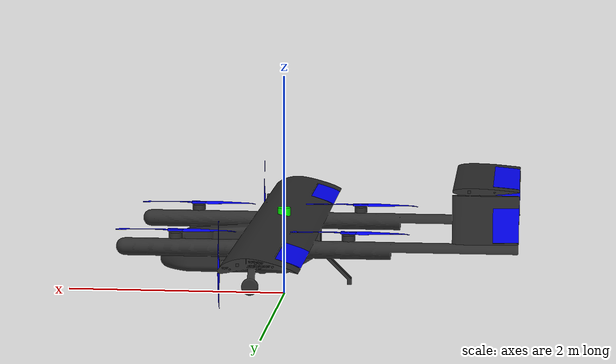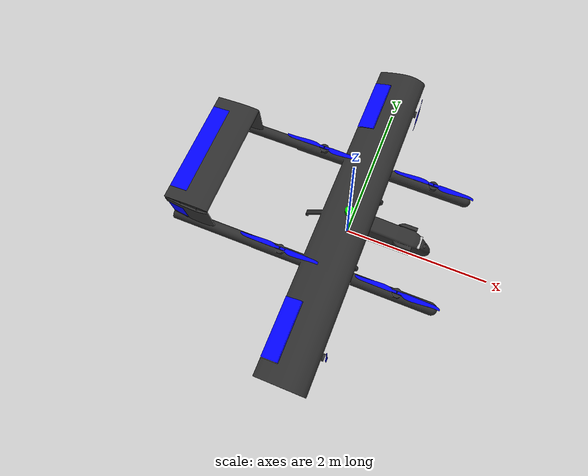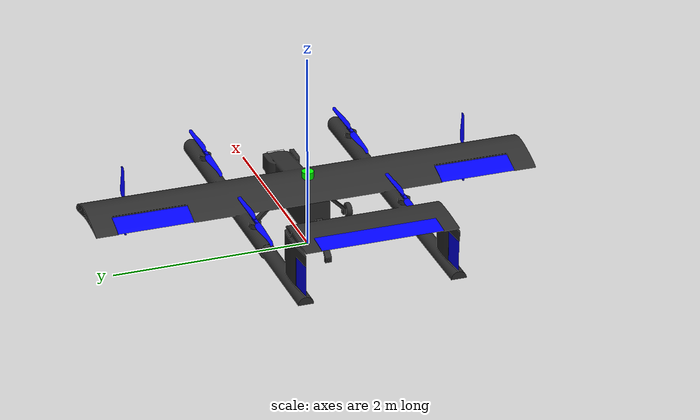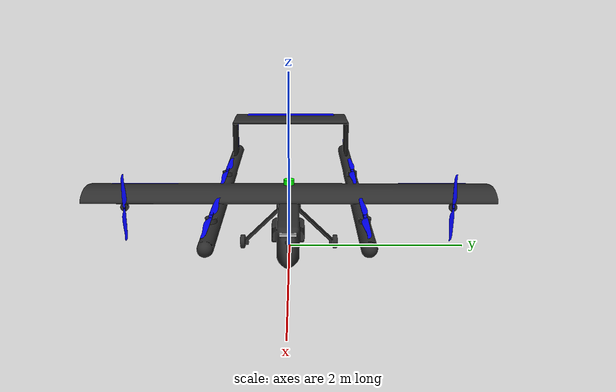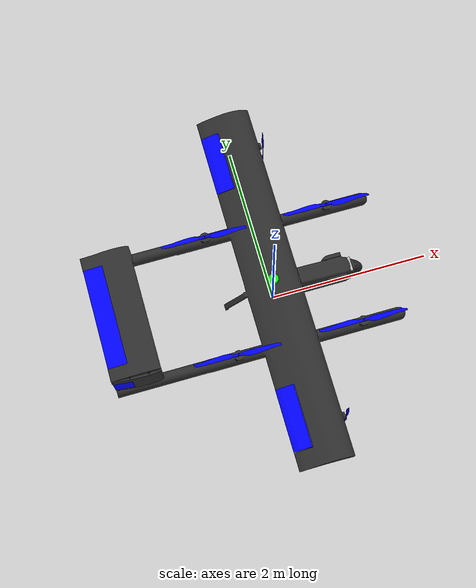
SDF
<?xml version="1.0"?>
<!-- DO NOT EDIT: Generated from p110_v2.sdf.jinja -->
<sdf version='1.10'>
  <model name='p110_v2'>
    <pose>0 0 0.8 0 0 0</pose>
    <link name='base_link'>
      <pose>0 0 0 0 0 0</pose>
      <inertial>
        <pose>0.3 0 -0.2 0 0 0</pose>
        <mass>40.0</mass>
        <inertia>
          <ixx>14.77</ixx>
          <ixy>-0.01</ixy>
          <ixz>-6.52</ixz>
          <iyy>36.47</iyy>
          <iyz>0.00</iyz>
          <izz>45.82</izz>
        </inertia>
      </inertial>
      <collision name='base_link_collision'>
        <pose>-0.5 0 0.2 0 0 0</pose>
        <geometry>
          <box>
            <size>3.89 4.57 1.8</size>
          </box>
        </geometry>
        <surface>
          <contact>
            <ode>
              <kp>100000</kp>
              <kd>1.0</kd>
              <max_vel>0.1</max_vel>
              <min_depth>0.001</min_depth>
            </ode>
          </contact>
          <friction>
            <ode />
          </friction>
        </surface>
      </collision>
      <visual name='base_link_visual'>
        <geometry>
          <mesh>
            <uri>model://p110_v2/meshes/wing.STL</uri>
          </mesh>
        </geometry>
        <material>
          <ambient>.175 .175 .175 1.0</ambient>
          <diffuse>.175 .175 .175 1.0</diffuse>
        </material>
      </visual>
      <gravity>1</gravity>
      <velocity_decay />
      <self_collide>0</self_collide>
      <sensor name="imu_sensor" type="imu">
        <gz_frame_id>base_link</gz_frame_id>
        <always_on>1</always_on>
        <update_rate>250</update_rate>
        <imu>
          <angular_velocity>
            <x>
              <noise type="gaussian">
                <mean>0</mean>
                <stddev>0.0003394</stddev>
                <dynamic_bias_stddev>3.8785e-05</dynamic_bias_stddev>
                <dynamic_bias_correlation_time>1000</dynamic_bias_correlation_time>
              </noise>
            </x>
            <y>
              <noise type="gaussian">
                <mean>0</mean>
                <stddev>0.0003394</stddev>
                <dynamic_bias_stddev>3.8785e-05</dynamic_bias_stddev>
                <dynamic_bias_correlation_time>1000</dynamic_bias_correlation_time>
              </noise>
            </y>
            <z>
              <noise type="gaussian">
                <mean>0</mean>
                <stddev>0.0003394</stddev>
                <dynamic_bias_stddev>3.8785e-05</dynamic_bias_stddev>
                <dynamic_bias_correlation_time>1000</dynamic_bias_correlation_time>
              </noise>
            </z>
          </angular_velocity>
          <linear_acceleration>
            <x>
              <noise type="gaussian">
                <mean>0</mean>
                <stddev>0.004</stddev>
                <dynamic_bias_stddev>0.006</dynamic_bias_stddev>
                <dynamic_bias_correlation_time>300</dynamic_bias_correlation_time>
              </noise>
            </x>
            <y>
              <noise type="gaussian">
                <mean>0</mean>
                <stddev>0.004</stddev>
                <dynamic_bias_stddev>0.006</dynamic_bias_stddev>
                <dynamic_bias_correlation_time>300</dynamic_bias_correlation_time>
              </noise>
            </y>
            <z>
              <noise type="gaussian">
                <mean>0</mean>
                <stddev>0.004</stddev>
                <dynamic_bias_stddev>0.006</dynamic_bias_stddev>
                <dynamic_bias_correlation_time>300</dynamic_bias_correlation_time>
              </noise>
            </z>
          </linear_acceleration>
        </imu>
      </sensor>
      <sensor name="air_pressure_sensor" type="air_pressure">
        <gz_frame_id>base_link</gz_frame_id>
        <always_on>1</always_on>
        <update_rate>50</update_rate>
        <air_pressure>
          <pressure>
            <noise type="gaussian">
              <mean>0</mean>
              <stddev>0.01</stddev>
            </noise>
          </pressure>
        </air_pressure>
      </sensor>
      <sensor name="magnetometer_sensor" type="magnetometer">
        <gz_frame_id>base_link</gz_frame_id>
        <always_on>1</always_on>
        <update_rate>100</update_rate>
        <magnetometer>
          <!-- TODO: update to fix units and coordinate system when we move past Harmonic -->
          <!-- See https://github.com/gazebosim/gz-sim/pull/2460 -->
          <!-- 3mgauss RMS: NOTE: noise is in tesla but sensor reports data in gauss -->
          <!-- Noise modeled after IIS2MDC -->
          <x>
            <noise type="gaussian">
              <stddev>0.0001</stddev>
            </noise>
          </x>
          <y>
            <noise type="gaussian">
              <stddev>0.0001</stddev>
            </noise>
          </y>
          <z>
            <noise type="gaussian">
              <stddev>0.0001</stddev>
            </noise>
          </z>
        </magnetometer>
      </sensor>
      <sensor name="navsat_sensor" type="navsat">
        <gz_frame_id>base_link</gz_frame_id>
        <always_on>1</always_on>
        <update_rate>30</update_rate>
      </sensor>

    </link>

    <!-- Lidar physical link + fixed joint so it renders as a cylinder -->
    <joint name="lidar_sensor_joint" type="fixed">
      <parent>base_link</parent>
      <child>velodyne</child>
      <pose relative_to="base_link">0 0 -0.036 0 0 0</pose>
    </joint>

    <link name="velodyne">
      <pose relative_to="base_link">0 0 -0.036 0 0 0</pose>
      <inertial>
        <mass>0.83</mass>
        <inertia>
          <ixx>0.000908</ixx>
          <iyy>0.000908</iyy>
          <izz>0.001104</izz>
          <ixy>0</ixy>
          <ixz>0</ixz>
          <iyz>0</iyz>
        </inertia>
      </inertial>
      <collision name="lidar_collision">
        <pose>0 0 0 0 0 0</pose>
        <geometry>
          <cylinder>
            <radius>0.0516</radius>
            <length>0.0717</length>
          </cylinder>
        </geometry>
      </collision>
      <visual name="lidar_visual">
        <pose>0 0 0 0 0 0</pose>
        <geometry>
          <cylinder>
            <radius>0.06</radius>
            <length>0.0717</length>
          </cylinder>
        </geometry>

        <material>
          <ambient>0 0.8 0 1</ambient>
          <diffuse>0 1 0 1</diffuse>
        </material>
      </visual>

      <sensor name="lidar_vlp16" type="gpu_lidar">
        <pose>0 0 0 0 0 0</pose>
        <gz_frame_id>velodyne</gz_frame_id>
        <topic>/velodyne_points</topic>
        <update_rate>5</update_rate>
        <always_on>true</always_on>
        <visualize>true</visualize>
        <lidar>
          <scan>
            <horizontal>
              <samples>360</samples>
              <resolution>1</resolution>
              <min_angle>-3.14159265</min_angle>
              <max_angle>3.14159265</max_angle>
            </horizontal>
            <vertical>
              <samples>16</samples>
              <resolution>1</resolution>
              <min_angle>-0.174532925</min_angle>
              <max_angle>0.174532925</max_angle>
            </vertical>
          </scan>
          <range>
            <min>0.5</min>
            <max>50.0</max>
            <resolution>0.01</resolution>
          </range>
          <noise>
            <type>gaussian</type>
            <mean>0.0</mean>
            <stddev>0.01</stddev>
          </noise>
        </lidar>
      </sensor>
    </link>

<!-- replace with zed x -->
    <include merge='true'>
      <uri>model://better_cam</uri>
      <pose>0.97 0 -0.26 0 0 0</pose>
    </include>
    <joint name="CameraJoint" type="fixed">
      <parent>base_link</parent>
      <child>camera_link</child>
      <pose relative_to="base_link">0.97 0 -0.26 0 0 0</pose>
    </joint>

    <link name='rotor_0'>
      <pose>0.89 -0.76 -0.08 0 0 0</pose>
      <inertial>
        <pose>0 0 0 0 0 0</pose>
        <mass>0.43</mass>
        <inertia>
          <ixx>0.03</ixx>
          <ixy>0</ixy>
          <ixz>0</ixz>
          <iyy>0.000</iyy>
          <iyz>0</iyz>
          <izz>0.03</izz>
        </inertia>
      </inertial>
      <collision name='rotor_0_collision'>
        <pose>0 0 0 0 0 0</pose>
        <geometry>
          <cylinder>
            <length>1.08</length>
            <radius>0.1</radius>
          </cylinder>
        </geometry>
        <surface>
          <contact>
            <ode />
          </contact>
          <friction>
            <ode />
          </friction>
        </surface>
      </collision>
      <visual name='rotor_0_visual'>
        <pose>0 0 0 0 0 0</pose>
        <geometry>
          <mesh>
            <uri>model://p110_v2/meshes/prop_cw.STL</uri>
          </mesh>
        </geometry>
        <material>
          <ambient>0 0 1 1.0</ambient>
          <diffuse>0 0 1 1.0</diffuse>
        </material>
      </visual>
      <gravity>1</gravity>
      <velocity_decay />
      <self_collide>0</self_collide>
    </link>

    <joint name='rotor_0_joint' type='revolute'>
      <child>rotor_0</child>
      <parent>base_link</parent>
      <axis>
        <xyz>0 0 1</xyz> <!-- vertical thrust (lift) -->
        <limit>
          <lower>-1e+16</lower>
          <upper>1e+16</upper>
        </limit>
        <dynamics>
          <spring_reference>0</spring_reference>
          <spring_stiffness>0</spring_stiffness>
        </dynamics>
      </axis>
    </joint>

    <link name='rotor_1'>
      <pose>-0.645 0.76 -0.08 0 0 0</pose>
      <inertial>
        <pose>0 0 0 0 0 0</pose>
        <mass>0.43</mass>
        <inertia>
          <ixx>0.03</ixx>
          <ixy>0</ixy>
          <ixz>0</ixz>
          <iyy>0.000</iyy>
          <iyz>0</iyz>
          <izz>0.03</izz>
        </inertia>
      </inertial>
      <collision name='rotor_1_collision'>
        <pose>0 0 0 0 0 0</pose>
        <geometry>
          <cylinder>
            <length>1.08</length>
            <radius>0.1</radius>
          </cylinder>
        </geometry>
        <surface>
          <contact>
            <ode />
          </contact>
          <friction>
            <ode />
          </friction>
        </surface>
      </collision>
      <visual name='rotor_1_visual'>
        <pose>0 0 0 0 0 0</pose>
        <geometry>
          <mesh>
            <uri>model://p110_v2/meshes/prop_cw.STL</uri>
          </mesh>
        </geometry>
        <material>
          <ambient>0 0 1 1.0</ambient>
          <diffuse>0 0 1 1.0</diffuse>
        </material>
      </visual>
      <gravity>1</gravity>
      <velocity_decay />
      <self_collide>0</self_collide>
    </link>

    <joint name='rotor_1_joint' type='revolute'>
      <child>rotor_1</child>
      <parent>base_link</parent>
      <axis>
        <xyz>0 0 1</xyz> <!-- vertical thrust (lift) -->
        <limit>
          <lower>-1e+16</lower>
          <upper>1e+16</upper>
        </limit>
        <dynamics>
          <spring_reference>0</spring_reference>
          <spring_stiffness>0</spring_stiffness>
        </dynamics>
      </axis>
    </joint>

    <link name='rotor_2'>
      <pose>0.89 0.76 -0.08 0 0 0</pose>
      <inertial>
        <pose>0 0 0 0 0 0</pose>
        <mass>0.43</mass>
        <inertia>
          <ixx>0.03</ixx>
          <ixy>0</ixy>
          <ixz>0</ixz>
          <iyy>0.000</iyy>
          <iyz>0</iyz>
          <izz>0.03</izz>
        </inertia>
      </inertial>
      <collision name='rotor_2_collision'>
        <pose>0 0 0 0 0 0</pose>
        <geometry>
          <cylinder>
            <length>1.08</length>
            <radius>0.1</radius>
          </cylinder>
        </geometry>
        <surface>
          <contact>
            <ode />
          </contact>
          <friction>
            <ode />
          </friction>
        </surface>
      </collision>
      <visual name='rotor_2_visual'>
        <pose>0 0 0 0 0 0</pose>
        <geometry>
          <mesh>
            <uri>model://p110_v2/meshes/prop_cw.STL</uri>
          </mesh>
        </geometry>
        <material>
          <ambient>0 0 1 1.0</ambient>
          <diffuse>0 0 1 1.0</diffuse>
        </material>
      </visual>
      <gravity>1</gravity>
      <velocity_decay />
      <self_collide>0</self_collide>
    </link>

    <joint name='rotor_2_joint' type='revolute'>
      <child>rotor_2</child>
      <parent>base_link</parent>
      <axis>
        <xyz>0 0 1</xyz> <!-- vertical thrust (lift) -->
        <limit>
          <lower>-1e+16</lower>
          <upper>1e+16</upper>
        </limit>
        <dynamics>
          <spring_reference>0</spring_reference>
          <spring_stiffness>0</spring_stiffness>
        </dynamics>
      </axis>
    </joint>
    <link name='rotor_3'>
      <pose>-0.645 -0.76 -0.08 0 0 0</pose>
      <inertial>
        <pose>0 0 0 0 0 0</pose>
        <mass>0.43</mass>
        <inertia>
          <ixx>0.03</ixx>
          <ixy>0</ixy>
          <ixz>0</ixz>
          <iyy>0.000</iyy>
          <iyz>0</iyz>
          <izz>0.03</izz>
        </inertia>
      </inertial>
      <collision name='rotor_3_collision'>
        <pose>0 0 0 0 0 0</pose>
        <geometry>
          <cylinder>
            <length>1.08</length>
            <radius>0.1</radius>
          </cylinder>
        </geometry>
        <surface>
          <contact>
            <ode />
          </contact>
          <friction>
            <ode />
          </friction>
        </surface>
      </collision>
      <visual name='rotor_3_visual'>
        <pose>0 0 0 0 0 0</pose>
        <geometry>
          <mesh>
            <uri>model://p110_v2/meshes/prop_cw.STL</uri>
          </mesh>
        </geometry>
        <material>
          <ambient>0 0 1 1.0</ambient>
          <diffuse>0 0 1 1.0</diffuse>
        </material>
      </visual>
      <gravity>1</gravity>
      <velocity_decay />
      <self_collide>0</self_collide>
    </link>

    <joint name='rotor_3_joint' type='revolute'>
      <child>rotor_3</child>
      <parent>base_link</parent>
      <axis>
        <xyz>0 0 1</xyz> <!-- vertical thrust (lift) -->
        <limit>
          <lower>-1e+16</lower>
          <upper>1e+16</upper>
        </limit>
        <dynamics>
          <spring_reference>0</spring_reference>
          <spring_stiffness>0</spring_stiffness>
        </dynamics>
      </axis>
    </joint>

    <link name='left_forward_rotor'>
      <pose>0.383 1.766 -0.205 0 0 0</pose>
      <inertial>
        <pose>0 0 0 0 1.57 0</pose>
        <mass>0.1</mass>
        <inertia>
          <ixx>0.03</ixx>
          <ixy>0</ixy>
          <ixz>0</ixz>
          <iyy>0.000</iyy>
          <iyz>0</iyz>
          <izz>0.03</izz>
        </inertia>
      </inertial>
      <collision name='left_forward_rotor_collision'>
        <pose>0 0 0 0 1.57 0</pose>
        <geometry>
          <cylinder>
            <length>0.76</length>
            <radius>0.1</radius>
          </cylinder>
        </geometry>
        <surface>
          <contact>
            <ode />
          </contact>
          <friction>
            <ode />
          </friction>
        </surface>
      </collision>
      <visual name='left_forward_rotor_visual'>
        <pose>0 0 0 0 1.57 0</pose>
        <geometry>
          <mesh>
            <uri>model://p110_v2/meshes/prop_cw.STL</uri>
            <scale>0.7 0.7 0.7</scale>
          </mesh>
        </geometry>
        <material>
          <ambient>0 0 1 1.0</ambient>
          <diffuse>0 0 1 1.0</diffuse>
        </material>
      </visual>
      <gravity>1</gravity>
      <velocity_decay />
      <self_collide>0</self_collide>
    </link>
    <joint name='left_forward_rotor_joint' type='revolute'>
      <child>left_forward_rotor</child>
      <parent>base_link</parent>
      <axis>
        <xyz>1 0 0</xyz>
        <limit>
          <lower>-1e+16</lower>
          <upper>1e+16</upper>
        </limit>
        <dynamics>
          <spring_reference>0</spring_reference>
          <spring_stiffness>0</spring_stiffness>
        </dynamics>
      </axis>
    </joint>

    <link name='right_forward_rotor'>
      <pose>0.383 -1.766 -0.205 0 0 0</pose>
      <inertial>
        <pose>0 0 0 0 1.57 0</pose>
        <mass>0.1</mass>
        <inertia>
          <ixx>0.03</ixx>
          <ixy>0</ixy>
          <ixz>0</ixz>
          <iyy>0.000</iyy>
          <iyz>0</iyz>
          <izz>0.03</izz>
        </inertia>
      </inertial>
      <collision name='right_forward_rotor_collision'>
        <pose>0 0 0 0 1.57 0</pose>
        <geometry>
          <cylinder>
            <length>0.76</length>
            <radius>0.1</radius>
          </cylinder>
        </geometry>
        <surface>
          <contact>
            <ode />
          </contact>
          <friction>
            <ode />
          </friction>
        </surface>
      </collision>
      <visual name='right_forward_rotor_visual'>
        <pose>0 0 0 0 1.57 0</pose>
        <geometry>
          <mesh>
            <uri>model://p110_v2/meshes/prop_cw.STL</uri>
            <scale>0.7 0.7 0.7</scale>
          </mesh>
        </geometry>
        <material>
          <ambient>0 0 1 1.0</ambient>
          <diffuse>0 0 1 1.0</diffuse>
        </material>
      </visual>
      <gravity>1</gravity>
      <velocity_decay />
      <self_collide>0</self_collide>
    </link>
    <joint name='right_forward_rotor_joint' type='revolute'>
      <child>right_forward_rotor</child>
      <parent>base_link</parent>
      <axis>
        <xyz>1 0 0</xyz>
        <limit>
          <lower>-1e+16</lower>
          <upper>1e+16</upper>
        </limit>
        <dynamics>
          <spring_reference>0</spring_reference>
          <spring_stiffness>0</spring_stiffness>
        </dynamics>
      </axis>
    </joint>

    <link name="left_elevon">
      <pose>-0.153 2.04 -0.12 0.00 0 0.0</pose>
      <inertial>
        <mass>0.91</mass>
        <pose>-0.05 -0.38 0 0 0 0</pose>
        <inertia>
          <ixx>0.01</ixx>
          <ixy>0.00</ixy>
          <iyy>0.12</iyy>
          <ixz>0.0</ixz>
          <iyz>0.0</iyz>
          <izz>0.11</izz>
        </inertia>
      </inertial>
      <visual name='left_elevon_visual'>
       <pose>0 0 0 1.5708 0 1.5708</pose>
        <geometry>
          <mesh>
            <uri>model://p110_v2/meshes/flap.STL</uri>
          </mesh>
        </geometry>
        <material>
          <ambient>0 0 1 1.0</ambient>
          <diffuse>0 0 1 1.0</diffuse>
        </material>
      </visual>
    </link>
    <link name="right_elevon">
      <pose>-0.153 -1.27 -0.12 0.00 0 0.0</pose> <!-- defines location of the link to base_link origin -->
      <inertial>
        <mass>0.91</mass>
        <pose>-0.05 -0.38 0 0 0 0</pose>
        <inertia>
          <ixx>0.01</ixx>
          <ixy>0.00</ixy>
          <iyy>0.12</iyy>
          <ixz>0.0</ixz>
          <iyz>0.0</iyz>
          <izz>0.11</izz>
        </inertia>

      </inertial>
      <visual name='right_elevon_visual'>
        <pose>0 0 0 1.5708 0 1.5708</pose>
        <geometry>
          <mesh>
            <uri>model://p110_v2/meshes/flap.STL</uri>
          </mesh>
        </geometry>
        <material>
          <ambient>0 0 1 1.0</ambient>
          <diffuse>0 0 1 1.0</diffuse>
        </material>
      </visual>
    </link>

    <link name="left_rudder">
      <pose>-1.925 0.76 -0.1538 0 0 0 </pose>
      <inertial>
        <mass>2</mass>
        <pose>-0.04 0 -0.18 0 0 0</pose>
        <inertia>
          <ixx>0.02</ixx>
          <ixy>0.00</ixy>
          <iyy>0.03</iyy>
          <ixz>0.00</ixz>
          <iyz>0.00</iyz>
          <izz>0.01</izz>
        </inertia>
      </inertial>
      <visual name='left_rudder_visual'>
          <pose>0 0 0 0 0 3.1216</pose>
        <geometry>
          <mesh>
            <uri>model://p110_v2/meshes/rudder.STL</uri>
          </mesh>
        </geometry>
        <material>
          <ambient>0 0 1 1.0</ambient>
          <diffuse>0 0 1 1.0</diffuse>
        </material>
      </visual>
    </link>
    <link name="right_rudder">
      <pose>-1.925 -0.76 -0.1538 0 0 0 </pose>
      <inertial>
        <mass>2</mass>
        <pose>-0.04 0 -0.18 0 0 0</pose>
        <inertia>
          <ixx>0.02</ixx>
          <ixy>0.00</ixy>
          <iyy>0.03</iyy>
          <ixz>0.00</ixz>
          <iyz>0.00</iyz>
          <izz>0.01</izz>
        </inertia>
      </inertial>
      <visual name='right_rudder_visual'>
          <pose>0 0 0 0 0 3.1216</pose>
        <geometry>
          <mesh>
            <uri>model://p110_v2/meshes/rudder.STL</uri>
          </mesh>
        </geometry>
        <material>
          <ambient>0 0 1 1.0</ambient>
          <diffuse>0 0 1 1.0</diffuse>
        </material>
      </visual>
    </link>

    <link name="elevator">
      <pose> -1.925 0.606 0.295 0.00 0 0.0</pose>
      <inertial>
        <mass>1.2</mass>
        <pose>-0.05 -0.61 0 0 0 0</pose>
        <inertia>
          <ixx>0.28</ixx>
          <ixy>0.0</ixy>
          <iyy>0.01</iyy>
          <ixz>0.0</ixz>
          <iyz>0.0</iyz>
          <izz>0.29</izz>
        </inertia>
      </inertial>
      <visual name='elevator_visual'>
          <pose>0 0 0 1.5708 3.1416 0</pose>
        <geometry>
          <mesh>
            <uri>model://p110_v2/meshes/elevator.STL</uri>
          </mesh>
        </geometry>
        <material>
          <ambient>0 0 1 1.0</ambient>
          <diffuse>0 0 1 1.0</diffuse>
        </material>
      </visual>
    </link>

    <joint name='servo_0' type='revolute'>
<!-- joint does not need pose, it will rotate at the origin of the child object -->
      <parent>base_link</parent>
      <child>left_elevon</child>
      <axis>
        <xyz>0 1 0</xyz>
        <limit>
          <lower>-0.52</lower>
          <upper>0.52</upper>
        </limit>
        <dynamics>
          <damping>2.0</damping>
        </dynamics>
      </axis>
      <physics>
        <ode>
          <implicit_spring_damper>1</implicit_spring_damper>
        </ode>
      </physics>
    </joint>
    <joint name='servo_1' type='revolute'>
      <parent>base_link</parent>
      <child>right_elevon</child>
      <axis>
        <xyz>0 1 0</xyz>
        <limit>
          <lower>-0.52</lower>
          <upper>0.52</upper>
        </limit>
        <dynamics>
          <damping>2.0</damping>
        </dynamics>
      </axis>
      <physics>
        <ode>
          <implicit_spring_damper>1</implicit_spring_damper>
        </ode>
      </physics>
    </joint>
    <joint name='servo_2' type='revolute'>
      <parent>base_link</parent>
      <child>elevator</child>
      <axis>
        <xyz>0 1 0</xyz>
        <limit>
          <lower>-0.52</lower>
          <upper>0.52</upper>
        </limit>
        <dynamics>
          <damping>1.5</damping>
        </dynamics>
      </axis>
      <physics>
        <ode>
          <implicit_spring_damper>1</implicit_spring_damper>
        </ode>
      </physics>
    </joint>
    <joint name='servo_3' type='revolute'>
      <parent>base_link</parent>
      <child>left_rudder</child>
      <axis>
        <xyz>0 0 1</xyz>
        <limit>
          <lower>-0.52</lower>
          <upper>0.52</upper>
        </limit>
        <dynamics>
          <damping>1.5</damping>
        </dynamics>
      </axis>
      <physics>
        <ode>
          <implicit_spring_damper>1</implicit_spring_damper>
        </ode>
      </physics>
    </joint>
    <joint name='servo_4' type='revolute'>
      <parent>base_link</parent>
      <child>right_rudder</child>
      <axis>
        <xyz>0 0 1</xyz>
        <limit>
          <lower>-0.52</lower>
          <upper>0.52</upper>
        </limit>
        <dynamics>
          <damping>1.5</damping>
        </dynamics>
      </axis>
      <physics>
        <ode>
          <implicit_spring_damper>1</implicit_spring_damper>
        </ode>
      </physics>
    </joint>
<!-- here -->
<!-- Main wing lift/drag -->
    <plugin filename="gz-sim-lift-drag-system" name="gz::sim::systems::LiftDrag">
      <a0>-0.1535</a0>
      <cla>5.18</cla>
      <cda>0.576</cda>
      <cma>-1.262</cma>
      <alpha_stall>0.27</alpha_stall>
      <cla_stall>-0.68</cla_stall>
      <cda_stall>1.2</cda_stall>
      <cma_stall>0.025</cma_stall>
      <cp>-1.2 0 0.05</cp>
      <area>3.8</area>
      <air_density>1.2041</air_density>
      <forward>1 0 0</forward>
      <upward>0 0 1</upward>
      <link_name>base_link</link_name>
    </plugin>

<!-- servo and lift drag for left elevon-->
    <plugin filename="gz-sim-lift-drag-system" name="gz::sim::systems::LiftDrag">
      <a0>0.0</a0>
      <cla>4.5</cla>
      <cda>0.15</cda>
      <cma>-0.08</cma>
      <alpha_stall>0.30</alpha_stall>
      <cla_stall>-0.75</cla_stall>
      <cda_stall>1.0</cda_stall>
      <cma_stall>0</cma_stall>
      <cp>-1.85 2.0 0.12</cp>
      <area>0.55</area>
      <air_density>1.2041</air_density>
      <forward>1 0 0</forward>
      <upward>0 0 1</upward>
      <link_name>base_link</link_name>
      <control_joint_name>servo_0</control_joint_name>
      <control_joint_rad_to_cl>-3.0</control_joint_rad_to_cl>
    </plugin>
    <plugin
      filename="gz-sim-joint-position-controller-system"
      name="gz::sim::systems::JointPositionController">
      <joint_name>servo_0</joint_name>
      <sub_topic>servo_0</sub_topic>
      <p_gain>12.0</p_gain>
      <i_gain>0.5</i_gain>
      <d_gain>3.0</d_gain>
    </plugin>

<!-- servo and lift drag for right elevon-->
    <plugin filename="gz-sim-lift-drag-system" name="gz::sim::systems::LiftDrag">
      <a0>0.0</a0>
      <cla>4.5</cla>
      <cda>0.15</cda>
      <cma>-0.08</cma>
      <alpha_stall>0.30</alpha_stall>
      <cla_stall>-0.75</cla_stall>
      <cda_stall>1.0</cda_stall>
      <cma_stall>0</cma_stall>
      <cp>-1.85 -2.0 0.12</cp>
      <area>0.55</area>
      <air_density>1.2041</air_density>
      <forward>1 0 0</forward>
      <upward>0 0 1</upward>
      <link_name>base_link</link_name>
      <control_joint_name>servo_1</control_joint_name>
      <control_joint_rad_to_cl>-3.0</control_joint_rad_to_cl>
    </plugin>
    <plugin
      filename="gz-sim-joint-position-controller-system"
      name="gz::sim::systems::JointPositionController">
      <joint_name>servo_1</joint_name>
      <sub_topic>servo_1</sub_topic>
      <p_gain>12.0</p_gain>
      <i_gain>0.5</i_gain>
      <d_gain>3.0</d_gain>
    </plugin>

    <!-- servo and lift drag for left rudder -->
    <plugin filename="gz-sim-lift-drag-system" name="gz::sim::systems::LiftDrag">
      <a0>0.0</a0>
      <cla>4.2</cla>
      <cda>0.25</cda>
      <cma>0.0</cma>
      <alpha_stall>0.28</alpha_stall>
      <cla_stall>-0.65</cla_stall>
      <cda_stall>0.95</cda_stall>
      <cma_stall>0</cma_stall>
      <cp>-3.85 0.76 0.55</cp>
      <area>0.18</area>
      <air_density>1.2041</air_density>
      <forward>1 0 0</forward>
      <upward>0 1 0</upward>
      <link_name>base_link</link_name>
      <control_joint_name>servo_3</control_joint_name>
      <control_joint_rad_to_cl>5.0</control_joint_rad_to_cl>
    </plugin>
    <plugin
      filename="gz-sim-joint-position-controller-system"
      name="gz::sim::systems::JointPositionController">
      <joint_name>servo_3</joint_name>
      <sub_topic>servo_3</sub_topic>
      <p_gain>15.0</p_gain>
      <i_gain>0.3</i_gain>
      <d_gain>2.5</d_gain>
    </plugin>

    <!-- servo and lift drag for right rudder -->
    <plugin filename="gz-sim-lift-drag-system" name="gz::sim::systems::LiftDrag">
      <a0>0.0</a0>
      <cla>4.2</cla>
      <cda>0.25</cda>
      <cma>0.0</cma>
      <alpha_stall>0.28</alpha_stall>
      <cla_stall>-0.65</cla_stall>
      <cda_stall>0.95</cda_stall>
      <cma_stall>0</cma_stall>
      <cp>-3.85 -0.76 0.55</cp>
      <area>0.18</area>
      <air_density>1.2041</air_density>
      <forward>1 0 0</forward>
      <upward>0 1 0</upward>
      <link_name>base_link</link_name>
      <control_joint_name>servo_4</control_joint_name>
      <control_joint_rad_to_cl>5.0</control_joint_rad_to_cl>
    </plugin>
    <plugin
      filename="gz-sim-joint-position-controller-system"
      name="gz::sim::systems::JointPositionController">
      <joint_name>servo_4</joint_name>
      <sub_topic>servo_4</sub_topic>
      <p_gain>15.0</p_gain>
      <i_gain>0.3</i_gain>
      <d_gain>2.5</d_gain>
    </plugin>

    <!-- servo and lift drag for elevator-->
    <plugin filename="gz-sim-lift-drag-system" name="gz::sim::systems::LiftDrag">
      <a0>-0.05</a0>
      <cla>4.3</cla>
      <cda>0.20</cda>
      <cma>-0.05</cma>
      <alpha_stall>0.29</alpha_stall>
      <cla_stall>-0.70</cla_stall>
      <cda_stall>0.98</cda_stall>
      <cma_stall>0.02</cma_stall>
      <cp>-3.92 0 0.52</cp>
      <area>0.35</area>
      <air_density>1.2041</air_density>
      <forward>1 0 0</forward>
      <upward>0 0 1</upward>
      <link_name>base_link</link_name>
      <control_joint_name>servo_2</control_joint_name>
      <control_joint_rad_to_cl>-10.0</control_joint_rad_to_cl>
    </plugin>
    <plugin
      filename="gz-sim-joint-position-controller-system"
      name="gz::sim::systems::JointPositionController">
      <joint_name>servo_2</joint_name>
      <sub_topic>servo_2</sub_topic>
      <p_gain>15.0</p_gain>
      <i_gain>0.4</i_gain>
      <d_gain>3.5</d_gain>
    </plugin>

    <!-- vertical rotors: Hobbywing XRotor X11 Plus -->
    <plugin filename="gz-sim-multicopter-motor-model-system"
      name="gz::sim::systems::MulticopterMotorModel">
      <jointName>rotor_0_joint</jointName>
      <linkName>rotor_0</linkName>
      <turningDirection>ccw</turningDirection>
      <timeConstantUp>0.015</timeConstantUp>
      <timeConstantDown>0.030</timeConstantDown>
      <maxRotVelocity>1400</maxRotVelocity>
      <motorConstant>1.2e-04</motorConstant>
      <momentConstant>0.09</momentConstant>
      <commandSubTopic>command/motor_speed</commandSubTopic>
      <motorNumber>0</motorNumber>
      <rotorDragCoefficient>0.0002</rotorDragCoefficient>
      <rollingMomentCoefficient>2e-06</rollingMomentCoefficient>
      <rotorVelocitySlowdownSim>10</rotorVelocitySlowdownSim>
      <motorType>velocity</motorType>
    </plugin>
    <plugin filename="gz-sim-multicopter-motor-model-system"
      name="gz::sim::systems::MulticopterMotorModel">
      <jointName>rotor_1_joint</jointName>
      <linkName>rotor_1</linkName>
      <turningDirection>ccw</turningDirection>
      <timeConstantUp>0.015</timeConstantUp>
      <timeConstantDown>0.030</timeConstantDown>
      <maxRotVelocity>1400</maxRotVelocity>
      <motorConstant>1.2e-04</motorConstant>
      <momentConstant>0.09</momentConstant>
      <commandSubTopic>command/motor_speed</commandSubTopic>
      <motorNumber>1</motorNumber>
      <rotorDragCoefficient>0.0002</rotorDragCoefficient>
      <rollingMomentCoefficient>2e-06</rollingMomentCoefficient>
      <rotorVelocitySlowdownSim>10</rotorVelocitySlowdownSim>
      <motorType>velocity</motorType>
    </plugin>
    <plugin
      filename="gz-sim-multicopter-motor-model-system"
      name="gz::sim::systems::MulticopterMotorModel">
      <jointName>rotor_2_joint</jointName>
      <linkName>rotor_2</linkName>
      <turningDirection>cw</turningDirection>
      <timeConstantUp>0.015</timeConstantUp>
      <timeConstantDown>0.030</timeConstantDown>
      <maxRotVelocity>1400</maxRotVelocity>
      <motorConstant>1.2e-04</motorConstant>
      <momentConstant>0.09</momentConstant>
      <commandSubTopic>command/motor_speed</commandSubTopic>
      <motorNumber>2</motorNumber>
      <rotorDragCoefficient>0.0002</rotorDragCoefficient>
      <rollingMomentCoefficient>2e-06</rollingMomentCoefficient>
      <rotorVelocitySlowdownSim>10</rotorVelocitySlowdownSim>
      <motorType>velocity</motorType>
    </plugin>
    <plugin
      filename="gz-sim-multicopter-motor-model-system"
      name="gz::sim::systems::MulticopterMotorModel">
      <jointName>rotor_3_joint</jointName>
      <linkName>rotor_3</linkName>
      <turningDirection>cw</turningDirection>
      <timeConstantUp>0.015</timeConstantUp>
      <timeConstantDown>0.030</timeConstantDown>
      <maxRotVelocity>1400</maxRotVelocity>
      <motorConstant>1.2e-04</motorConstant>
      <momentConstant>0.09</momentConstant>
      <commandSubTopic>command/motor_speed</commandSubTopic>
      <motorNumber>3</motorNumber>
      <rotorDragCoefficient>0.0002</rotorDragCoefficient>
      <rollingMomentCoefficient>2e-06</rollingMomentCoefficient>
      <rotorVelocitySlowdownSim>10</rotorVelocitySlowdownSim>
      <motorType>velocity</motorType>
    </plugin>

    <!-- forward rotors: TMotor MN8017 KV120 -->
    <plugin
      filename="gz-sim-multicopter-motor-model-system"
      name="gz::sim::systems::MulticopterMotorModel">
      <jointName>left_forward_rotor_joint</jointName>
      <linkName>left_forward_rotor</linkName>
      <turningDirection>ccw</turningDirection>
      <timeConstantUp>0.020</timeConstantUp>
      <timeConstantDown>0.035</timeConstantDown>
      <maxRotVelocity>280</maxRotVelocity>
      <motorConstant>1.35e-05</motorConstant>
      <momentConstant>0.016</momentConstant>
      <commandSubTopic>command/motor_speed</commandSubTopic>
      <motorNumber>4</motorNumber>
      <rotorDragCoefficient>0.00035</rotorDragCoefficient>
      <rollingMomentCoefficient>3e-06</rollingMomentCoefficient>
      <rotorVelocitySlowdownSim>10</rotorVelocitySlowdownSim>
      <motorType>velocity</motorType>
    </plugin>
    <plugin
      filename="gz-sim-multicopter-motor-model-system"
      name="gz::sim::systems::MulticopterMotorModel">
      <jointName>right_forward_rotor_joint</jointName>
      <linkName>right_forward_rotor</linkName>
      <turningDirection>cw</turningDirection>
      <timeConstantUp>0.020</timeConstantUp>
      <timeConstantDown>0.035</timeConstantDown>
      <maxRotVelocity>280</maxRotVelocity>
      <motorConstant>1.35e-05</motorConstant>
      <momentConstant>0.016</momentConstant>
      <commandSubTopic>command/motor_speed</commandSubTopic>
      <motorNumber>5</motorNumber>
      <rotorDragCoefficient>0.00035</rotorDragCoefficient>
      <rollingMomentCoefficient>3e-06</rollingMomentCoefficient>
      <rotorVelocitySlowdownSim>10</rotorVelocitySlowdownSim>
      <motorType>velocity</motorType>
    </plugin>
    <static>0</static>
  </model>
</sdf>

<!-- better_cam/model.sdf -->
<sdf version='1.9'>
  <model name='better_cam'>
    <pose>0 0 0 0 0 0</pose>
    <self_collide>false</self_collide>
    <static>false</static>
    <link name="camera_link">
      <inertial>
        <pose>0.03 0.03 0.03 0 0 0</pose>
        <mass>0.050</mass>
        <inertia>
          <ixx>0.00004</ixx>
          <ixy>0</ixy>
          <ixz>0</ixz>
          <iyy>0.00004</iyy>
          <iyz>0</iyz>
          <izz>0.00004</izz>
        </inertia>
      </inertial>
      <visual name="mono_cam/visual/housing">
        <geometry>
          <box>
            <size>0.033 0.175 0.03</size>
          </box>
        </geometry>
      </visual>
      <visual name="mono_cam/visual/lens">
        <pose>0.015 0 0 0 1.5707 0</pose>
        <geometry>
          <cylinder>
            <radius>0.008</radius>
            <length>0.01</length>
          </cylinder>
        </geometry>
      </visual>
      <visual name="mono_cam/visual/lens_glass">
        <pose>0.014 0 0 0 0 0</pose>
        <geometry>
          <sphere>
            <radius>0.0079</radius>
          </sphere>
        </geometry>
        <material>
          <ambient>.4 .4 .5 .95</ambient>
          <diffuse>.4 .4 .5 .95</diffuse>
          <specular>1 1 1 1</specular>
          <emissive>0 0 0 1</emissive>
        </material>
      </visual>

      <sensor name="camera" type="rgbd_camera">
        <gz_frame_id>camera_link</gz_frame_id>
        <pose>0 0 0 0 0 0</pose>
        <camera>
          <!-- ZED X HFOV: 110° = 1.92 rad (actual)
               Using 105° = 1.83 rad to approximate with neural depth -->
          <horizontal_fov>1.83</horizontal_fov>
          <image>
            <!-- ZED X HD mode: 1280x720; using 672x376 for sim perf -->
            <width>672</width>
            <height>376</height>
            <format>R8G8B8</format>
          </image>
          <clip>
            <near>0.3</near>
            <far>20.0</far>
          </clip>
          <depth_camera>
            <clip>
              <near>0.3</near>
              <far>20.0</far>
            </clip>
          </depth_camera>
          <noise>
            <type>gaussian</type>
            <mean>0.0</mean>
            <stddev>0.007</stddev>
          </noise>
        </camera>
        <always_on>1</always_on>
        <update_rate>15</update_rate>
        <visualize>true</visualize>
      </sensor>

      <gravity>true</gravity>
      <velocity_decay />
    </link>
  </model>
</sdf>
